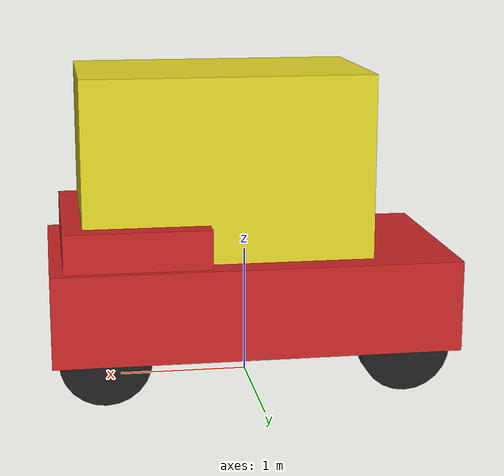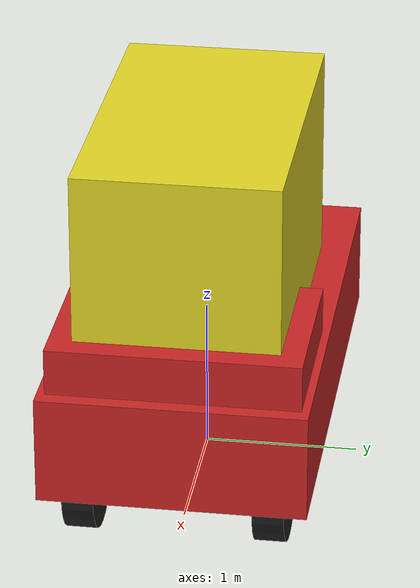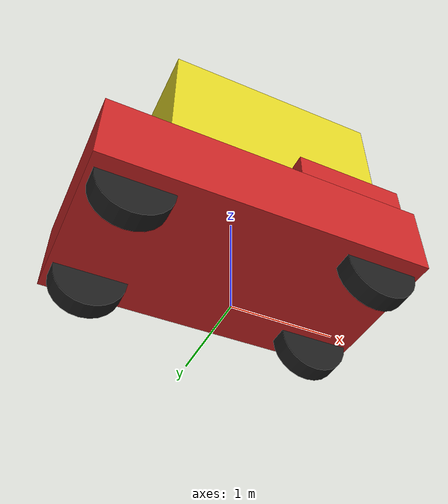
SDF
<?xml version="1.0"?>
<sdf version="1.6">
  <model name="simple_vehicle">
    <!-- Static for now -->
    <static>true</static>

    <link name="vehicle_link">
      <!-- Rough inertial -->
      <inertial>
        <mass>800</mass>
        <inertia>
          <ixx>100</ixx>
          <iyy>300</iyy>
          <izz>350</izz>
          <ixy>0</ixy>
          <ixz>0</ixz>
          <iyz>0</iyz>
        </inertia>
      </inertial>

      <!-- ===================== COLLISION BODY (x2) ===================== -->
      <!-- Original: size 1.55 x 0.85 x 1.05, pose z=0.525 -->
      <!-- New (×2): size 3.10 x 1.70 x 2.10, pose z=1.05 -->
      <collision name="collision_body">
        <pose>0 0 1.05 0 0 0</pose>
        <geometry>
          <box>
            <size>3.10 1.70 2.10</size>
          </box>
        </geometry>
      </collision>

      <!-- ===================== VISUALS: BODY (x2) ===================== -->

      <!-- Lower chassis -->
      <!-- Original: size 1.55 x 0.85 x 0.35, pose z=0.35 -->
      <!-- New:      size 3.10 x 1.70 x 0.70, pose z=0.70 -->
      <visual name="body_lower">
        <pose>0 0 0.70 0 0 0</pose>
        <geometry>
          <box>
            <size>3.10 1.70 0.70</size>
          </box>
        </geometry>
        <material>
          <script>
            <uri>file://media/materials/scripts/gazebo.material</uri>
            <!-- make it BRIGHT RED so we can SEE that it changed -->
            <name>Gazebo/Red</name>
          </script>
        </material>
      </visual>

      <!-- Upper cabin -->
      <!-- Original: size 1.10 x 0.65 x 0.70, pose x=0.10, z=0.875 -->
      <!-- New:      size 2.20 x 1.30 x 1.40, pose x=0.20, z=1.75 -->
      <visual name="body_upper">
        <pose>0.20 0 1.75 0 0 0</pose>
        <geometry>
          <box>
            <size>2.20 1.30 1.40</size>
          </box>
        </geometry>
        <material>
          <script>
            <uri>file://media/materials/scripts/gazebo.material</uri>
            <name>Gazebo/Yellow</name>
          </script>
        </material>
      </visual>

      <!-- Hood -->
      <!-- Original: size 0.55 x 0.80 x 0.25, pose x=0.45, z=0.55 -->
      <!-- New:      size 1.10 x 1.60 x 0.50, pose x=0.90, z=1.10 -->
      <visual name="body_hood">
        <pose>0.90 0 1.10 0 0 0</pose>
        <geometry>
          <box>
            <size>1.10 1.60 0.50</size>
          </box>
        </geometry>
        <material>
          <script>
            <uri>file://media/materials/scripts/gazebo.material</uri>
            <name>Gazebo/Red</name>
          </script>
        </material>
      </visual>

      <!-- ===================== WHEELS (x2, no arches) ===================== -->

      <!-- FRONT LEFT wheel (x+, y+) -->
      <visual name="wheel_fl">
        <pose>1.15 0.60 0.35 1.5708 0 0</pose>
        <geometry>
          <cylinder>
            <radius>0.35</radius>
            <length>0.20</length>
          </cylinder>
        </geometry>
        <material>
          <script>
            <uri>file://media/materials/scripts/gazebo.material</uri>
            <name>Gazebo/Black</name>
          </script>
        </material>
      </visual>

      <!-- FRONT RIGHT wheel (x+, y-) -->
      <visual name="wheel_fr">
        <pose>1.15 -0.60 0.35 1.5708 0 0</pose>
        <geometry>
          <cylinder>
            <radius>0.35</radius>
            <length>0.20</length>
          </cylinder>
        </geometry>
        <material>
          <script>
            <uri>file://media/materials/scripts/gazebo.material</uri>
            <name>Gazebo/Black</name>
          </script>
        </material>
      </visual>

      <!-- REAR LEFT wheel (x-, y+) -->
      <visual name="wheel_rl">
        <pose>-1.15 0.60 0.35 1.5708 0 0</pose>
        <geometry>
          <cylinder>
            <radius>0.35</radius>
            <length>0.20</length>
          </cylinder>
        </geometry>
        <material>
          <script>
            <uri>file://media/materials/scripts/gazebo.material</uri>
            <name>Gazebo/Black</name>
          </script>
        </material>
      </visual>

      <!-- REAR RIGHT wheel (x-, y-) -->
      <visual name="wheel_rr">
        <pose>-1.15 -0.60 0.35 1.5708 0 0</pose>
        <geometry>
          <cylinder>
            <radius>0.35</radius>
            <length>0.20</length>
          </cylinder>
        </geometry>
        <material>
          <script>
            <uri>file://media/materials/scripts/gazebo.material</uri>
            <name>Gazebo/Black</name>
          </script>
        </material>
      </visual>

    </link>
  </model>
</sdf>
